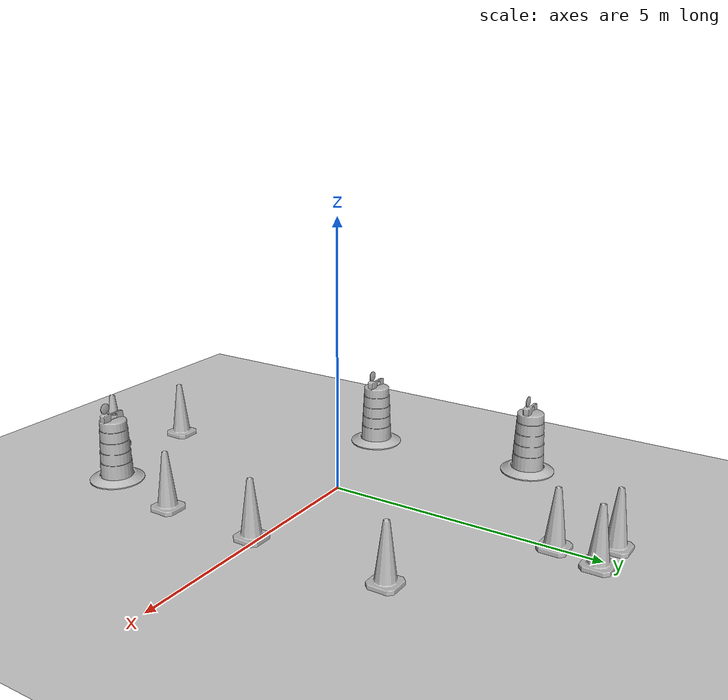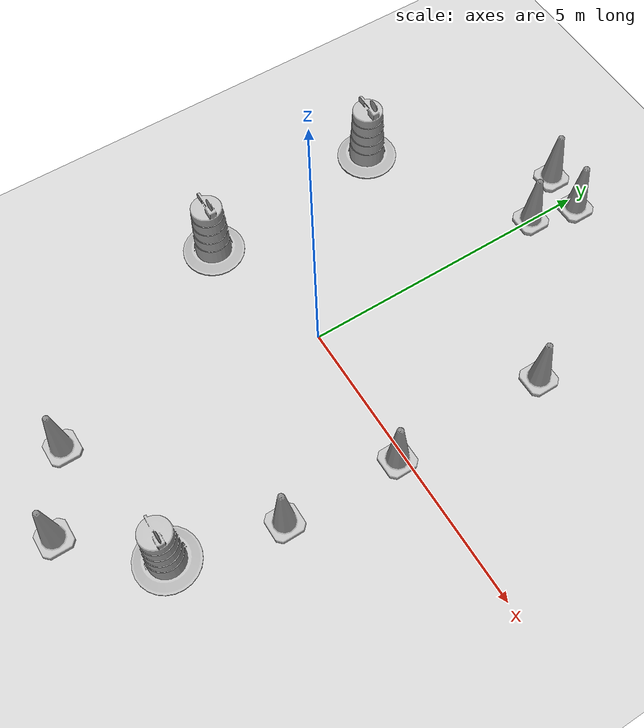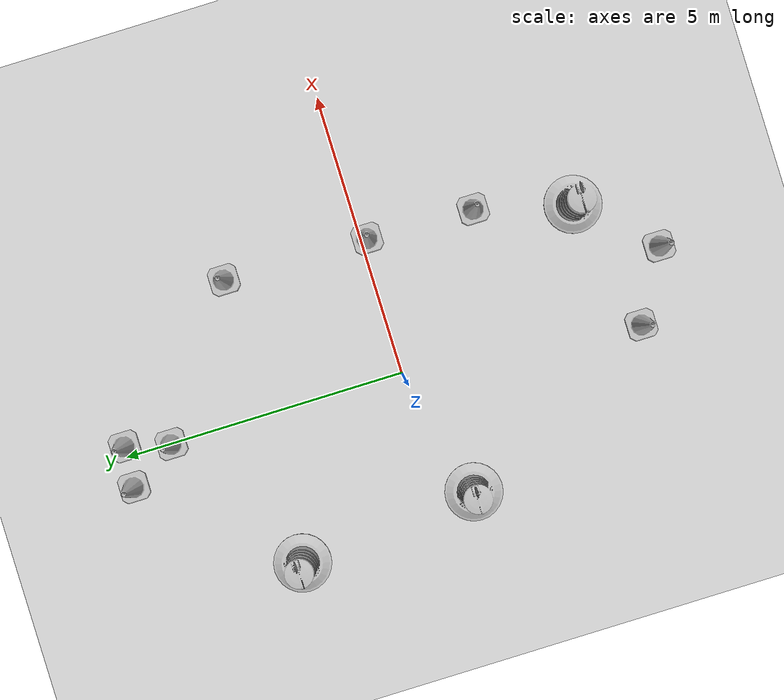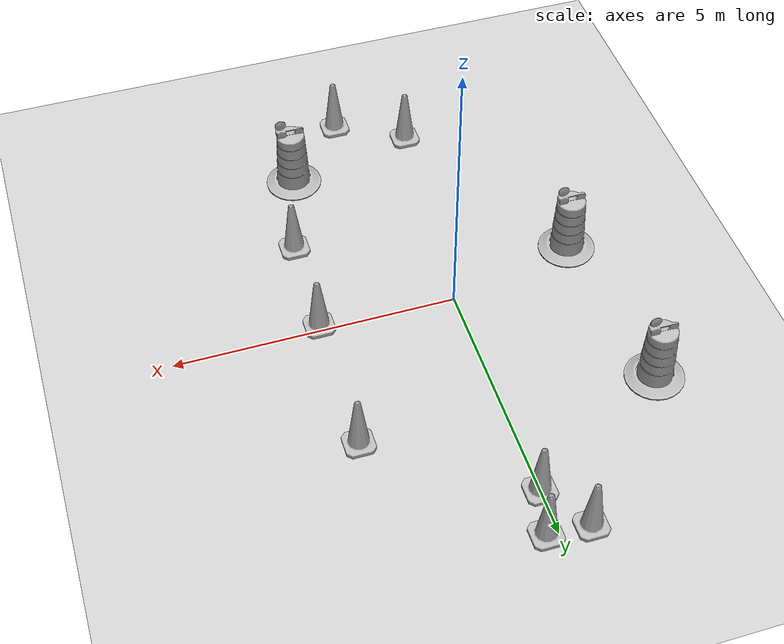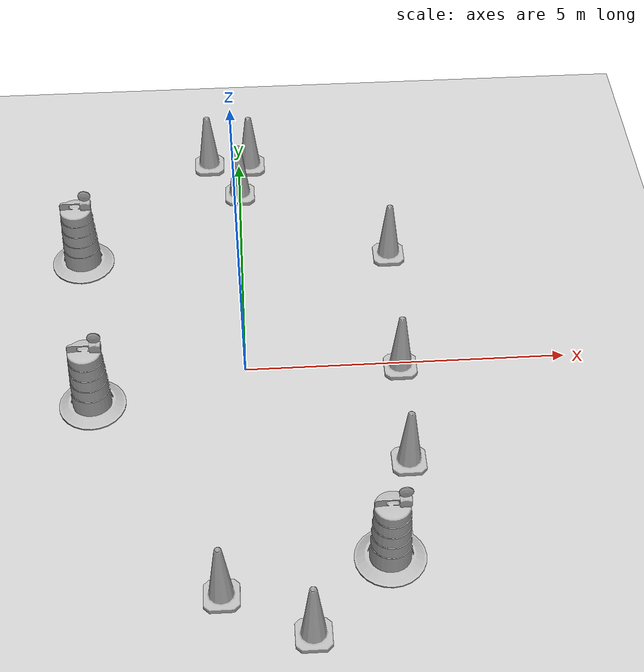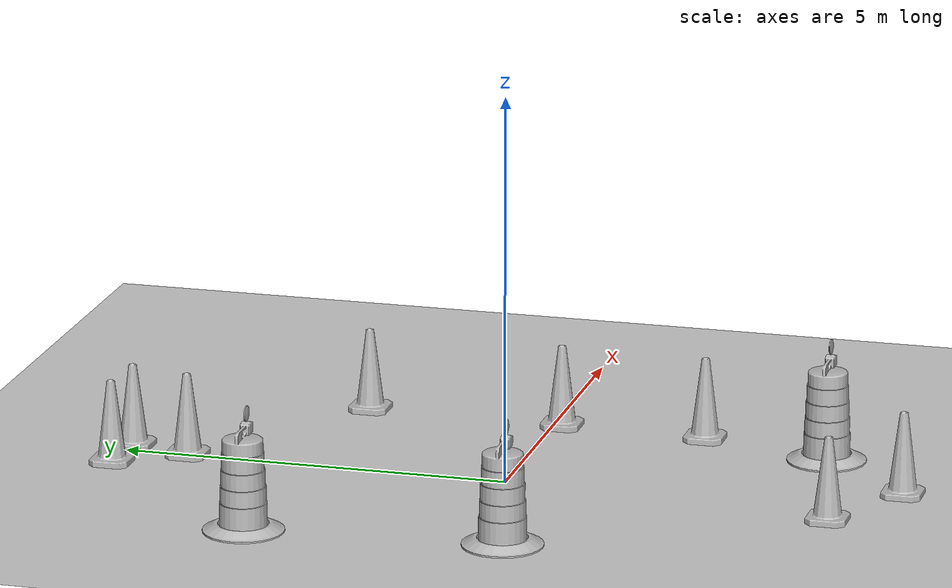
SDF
<sdf version="1.7">
 <world name="default">
  <light name="sun" type="directional">
   <pose>0 0 10 0 -0 0</pose>
   <diffuse>0.8 0.8 0.8 1</diffuse>
   <specular>0.2 0.2 0.2 1</specular>
   <attenuation>
    <range>1000</range>
    <constant>0.9</constant>
    <linear>0.01</linear>
    <quadratic>0.001</quadratic>
   </attenuation>
   <direction>-0.5 0.1 -0.9</direction>
   <spot><inner_angle>0</inner_angle><outer_angle>0</outer_angle><falloff>0</falloff></spot>
  </light>
  <model name="ground_plane">
   <static>1</static>
   <link name="link">
    <collision name="collision">
     <geometry><plane><normal>0 0 1</normal><size>100 100</size></plane></geometry>
     <surface>
      <contact><collide_bitmask>65535</collide_bitmask></contact>
      <friction><ode><mu>100</mu><mu2>50</mu2></ode></friction>
     </surface>
    </collision>
    <visual name="visual">
     <cast_shadows>0</cast_shadows>
     <geometry><plane><normal>0 0 1</normal><size>100 100</size></plane></geometry>
     <material>
      <script><uri>file://media/materials/scripts/gazebo.material</uri><name>Gazebo/Grey</name></script>
     </material>
    </visual>
   </link>
  </model>
  <gravity>0 0 -9.8</gravity>
  <magnetic_field>6e-06 2.3e-05 -4.2e-05</magnetic_field>
  <atmosphere type="adiabatic"/>
  <physics type="ode">
   <max_step_size>0.001</max_step_size>
   <real_time_factor>1</real_time_factor>
   <real_time_update_rate>1000</real_time_update_rate>
  </physics>
  <scene><ambient>0.4 0.4 0.4 1</ambient><background>0.7 0.7 0.7 1</background><shadows>1</shadows></scene>
  <spherical_coordinates>
   <surface_model>EARTH_WGS84</surface_model>
   <latitude_deg>0</latitude_deg>
   <longitude_deg>0</longitude_deg>
   <elevation>0</elevation>
   <heading_deg>0</heading_deg>
  </spherical_coordinates>
  <model name="Construction Barrel">
   <link name="link">
    <inertial>
     <pose>0 0 0.4 0 -0 0</pose>
     <mass>500</mass>
     <inertia><ixx>51.2096</ixx><iyy>51.2096</iyy><izz>25</izz><ixy>0</ixy><ixz>0</ixz><iyz>0</iyz></inertia>
    </inertial>
    <collision name="collision">
     <geometry><mesh><uri>model://construction_barrel/meshes/construction_barrel.dae</uri></mesh></geometry>
    </collision>
    <visual name="visual">
     <geometry><mesh><uri>model://construction_barrel/meshes/construction_barrel.dae</uri></mesh></geometry>
    </visual>
   </link>
   <pose>-2.64496 2.61771 -0 0 -0 -1.7e-05</pose>
  </model>
  <model name="Construction Barrel_0">
   <link name="link">
    <inertial>
     <pose>0 0 0.4 0 -0 0</pose>
     <mass>500</mass>
     <inertia><ixx>51.2096</ixx><iyy>51.2096</iyy><izz>25</izz><ixy>0</ixy><ixz>0</ixz><iyz>0</iyz></inertia>
    </inertial>
    <collision name="collision">
     <geometry><mesh><uri>model://construction_barrel/meshes/construction_barrel.dae</uri></mesh></geometry>
    </collision>
    <visual name="visual">
     <geometry><mesh><uri>model://construction_barrel/meshes/construction_barrel.dae</uri></mesh></geometry>
    </visual>
   </link>
   <pose>-2.33844 -0.590241 1e-06 3e-06 2e-06 -1.7e-05</pose>
  </model>
  <model name="Construction Cone">
   <link name="link">
    <collision name="collision">
     <geometry>
      <mesh><scale>10 10 10</scale><uri>model://construction_cone/meshes/construction_cone.dae</uri></mesh>
     </geometry>
    </collision>
    <visual name="visual">
     <geometry>
      <mesh><scale>10 10 10</scale><uri>model://construction_cone/meshes/construction_cone.dae</uri></mesh>
     </geometry>
    </visual>
    <inertial>
     <inertia><ixx>1</ixx><ixy>0</ixy><ixz>0</ixz><iyy>1</iyy><iyz>0</iyz><izz>1</izz></inertia>
     <mass>1</mass>
    </inertial>
   </link>
   <pose>2.35761 -2.02068 -0 0 -0 0</pose>
  </model>
  <model name="Construction Cone_0">
   <link name="link">
    <collision name="collision">
     <geometry>
      <mesh><scale>10 10 10</scale><uri>model://construction_cone/meshes/construction_cone.dae</uri></mesh>
     </geometry>
    </collision>
    <visual name="visual">
     <geometry>
      <mesh><scale>10 10 10</scale><uri>model://construction_cone/meshes/construction_cone.dae</uri></mesh>
     </geometry>
    </visual>
    <inertial>
     <inertia><ixx>1</ixx><ixy>0</ixy><ixz>0</ixz><iyy>1</iyy><iyz>0</iyz><izz>1</izz></inertia>
     <mass>1</mass>
    </inertial>
   </link>
   <pose>2.41174 -0.111751 -5e-06 4e-06 -1e-06 0</pose>
  </model>
  <model name="Construction Cone_1">
   <link name="link">
    <collision name="collision">
     <geometry>
      <mesh><scale>10 10 10</scale><uri>model://construction_cone/meshes/construction_cone.dae</uri></mesh>
     </geometry>
    </collision>
    <visual name="visual">
     <geometry>
      <mesh><scale>10 10 10</scale><uri>model://construction_cone/meshes/construction_cone.dae</uri></mesh>
     </geometry>
    </visual>
    <inertial>
     <inertia><ixx>1</ixx><ixy>0</ixy><ixz>0</ixz><iyy>1</iyy><iyz>0</iyz><izz>1</izz></inertia>
     <mass>1</mass>
    </inertial>
   </link>
   <pose>2.45638 2.47602 -0 0 -0 0</pose>
  </model>
  <model name="Construction Cone_2">
   <link name="link">
    <collision name="collision">
     <geometry>
      <mesh><scale>10 10 10</scale><uri>model://construction_cone/meshes/construction_cone.dae</uri></mesh>
     </geometry>
    </collision>
    <visual name="visual">
     <geometry>
      <mesh><scale>10 10 10</scale><uri>model://construction_cone/meshes/construction_cone.dae</uri></mesh>
     </geometry>
    </visual>
    <inertial>
     <inertia><ixx>1</ixx><ixy>0</ixy><ixz>0</ixz><iyy>1</iyy><iyz>0</iyz><izz>1</izz></inertia>
     <mass>1</mass>
    </inertial>
   </link>
   <pose>-0.521993 5.02354 -6e-06 -4e-06 0 0</pose>
  </model>
  <model name="Construction Cone_3">
   <link name="link">
    <collision name="collision">
     <geometry>
      <mesh><scale>10 10 10</scale><uri>model://construction_cone/meshes/construction_cone.dae</uri></mesh>
     </geometry>
    </collision>
    <visual name="visual">
     <geometry>
      <mesh><scale>10 10 10</scale><uri>model://construction_cone/meshes/construction_cone.dae</uri></mesh>
     </geometry>
    </visual>
    <inertial>
     <inertia><ixx>1</ixx><ixy>0</ixy><ixz>0</ixz><iyy>1</iyy><iyz>0</iyz><izz>1</izz></inertia>
     <mass>1</mass>
    </inertial>
   </link>
   <pose>0.200537 4.97138 -1e-06 2e-06 2e-06 0</pose>
  </model>
  <model name="Construction Cone_4">
   <link name="link">
    <collision name="collision">
     <geometry>
      <mesh><scale>10 10 10</scale><uri>model://construction_cone/meshes/construction_cone.dae</uri></mesh>
     </geometry>
    </collision>
    <visual name="visual">
     <geometry>
      <mesh><scale>10 10 10</scale><uri>model://construction_cone/meshes/construction_cone.dae</uri></mesh>
     </geometry>
    </visual>
    <inertial>
     <inertia><ixx>1</ixx><ixy>0</ixy><ixz>0</ixz><iyy>1</iyy><iyz>0</iyz><izz>1</izz></inertia>
     <mass>1</mass>
    </inertial>
   </link>
   <pose>0.001975 4.18419 -0 0 -0 0</pose>
  </model>
  <model name="Construction Cone_5">
   <link name="link">
    <collision name="collision">
     <geometry>
      <mesh><scale>10 10 10</scale><uri>model://construction_cone/meshes/construction_cone.dae</uri></mesh>
     </geometry>
    </collision>
    <visual name="visual">
     <geometry>
      <mesh><scale>10 10 10</scale><uri>model://construction_cone/meshes/construction_cone.dae</uri></mesh>
     </geometry>
    </visual>
    <inertial>
     <inertia><ixx>1</ixx><ixy>0</ixy><ixz>0</ixz><iyy>1</iyy><iyz>0</iyz><izz>1</izz></inertia>
     <mass>1</mass>
    </inertial>
   </link>
   <pose>-0.418016 -4.22195 -3e-06 -3e-06 -1e-06 -0</pose>
  </model>
  <model name="Construction Cone_6">
   <link name="link">
    <collision name="collision">
     <geometry>
      <mesh><scale>10 10 10</scale><uri>model://construction_cone/meshes/construction_cone.dae</uri></mesh>
     </geometry>
    </collision>
    <visual name="visual">
     <geometry>
      <mesh><scale>10 10 10</scale><uri>model://construction_cone/meshes/construction_cone.dae</uri></mesh>
     </geometry>
    </visual>
    <inertial>
     <inertia><ixx>1</ixx><ixy>0</ixy><ixz>0</ixz><iyy>1</iyy><iyz>0</iyz><izz>1</izz></inertia>
     <mass>1</mass>
    </inertial>
   </link>
   <pose>0.797627 -4.91872 -0 0 -0 0</pose>
  </model>
  <model name="Construction Barrel_1">
   <link name="link">
    <inertial>
     <pose>0 0 0.4 0 -0 0</pose>
     <mass>500</mass>
     <inertia><ixx>51.2096</ixx><iyy>51.2096</iyy><izz>25</izz><ixy>0</ixy><ixz>0</ixz><iyz>0</iyz></inertia>
    </inertial>
    <collision name="collision">
     <geometry><mesh><uri>model://construction_barrel/meshes/construction_barrel.dae</uri></mesh></geometry>
    </collision>
    <visual name="visual">
     <geometry><mesh><uri>model://construction_barrel/meshes/construction_barrel.dae</uri></mesh></geometry>
    </visual>
   </link>
   <pose>1.92991 -3.70557 -1e-06 3e-06 -2e-06 -2e-06</pose>
  </model>
 </world>
</sdf>
